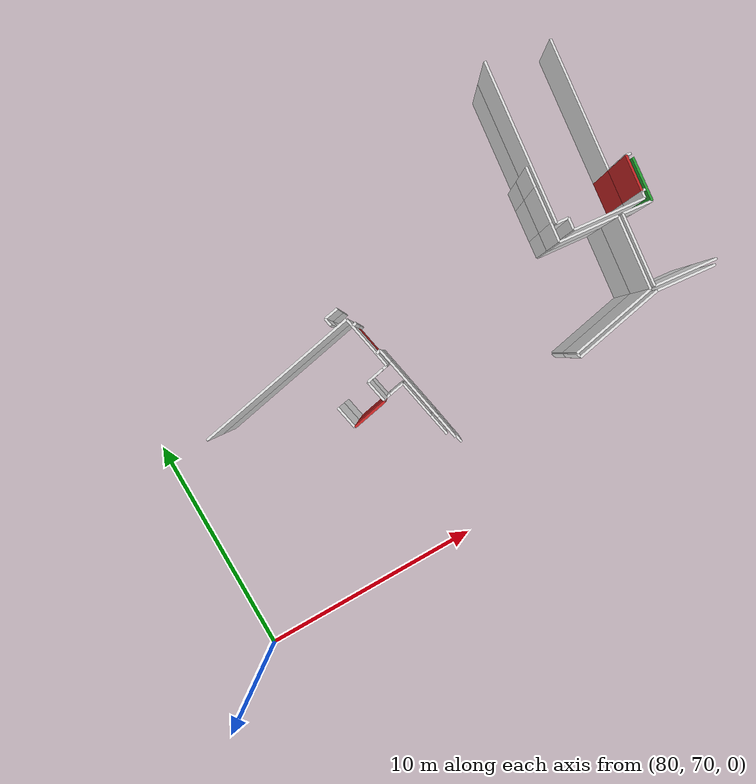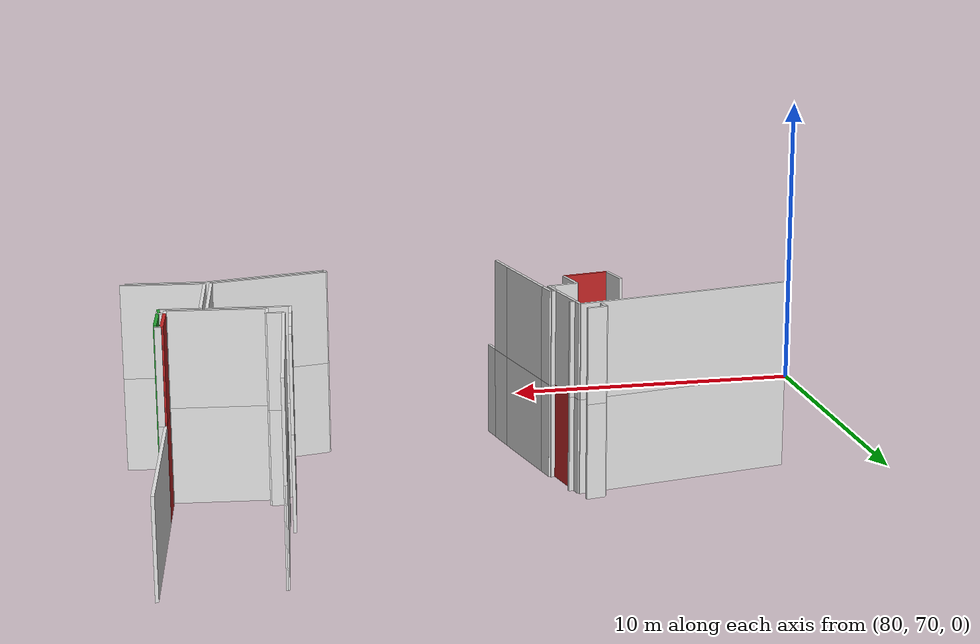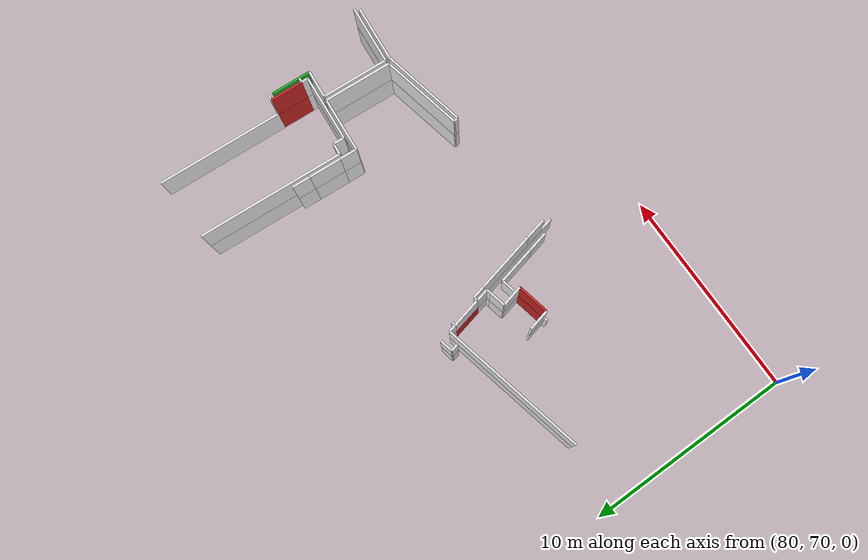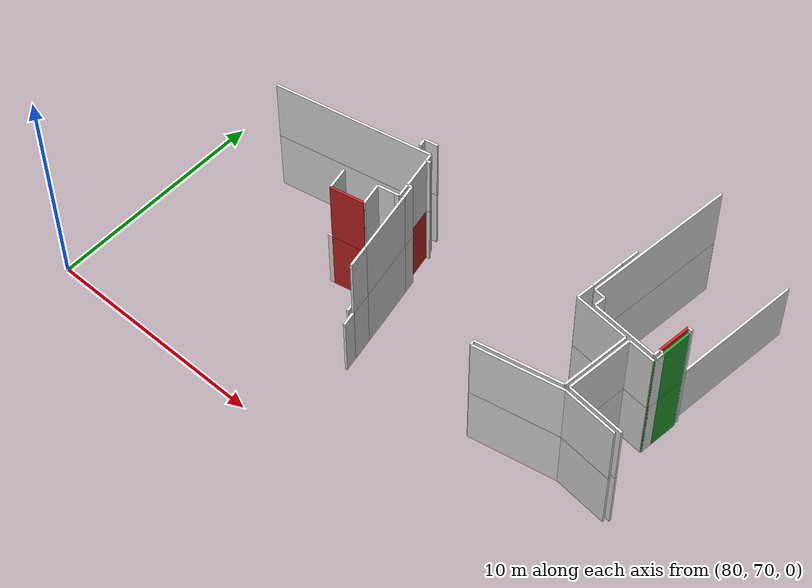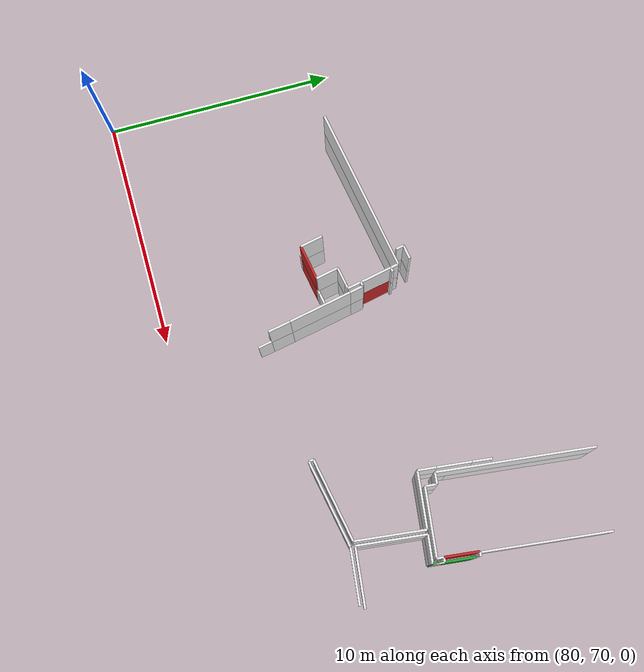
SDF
<sdf version="1.6">
 <world name="default">
  <model name="wall_102.5_80.0_1.5">
   <static>true</static>
   <pose>102.52499999999418 79.9550000000745 1.5 0 0 -1.6711294309773623</pose>
   <link name="link">
    <visual name="visual">
     <geometry><box><size>1.4975313020620318 0.1 3</size></box></geometry>
     <material>
      <script><uri>file://media/materials/scripts/gazebo.material</uri><name>Gazebo/Red</name></script>
     </material>
    </visual>
    <collision name="collision"><geometry><box><size>1.4975313020620318 0.1 3</size></box></geometry></collision>
   </link>
  </model>
  <model name="wall_102.7_79.6_1.5">
   <static>true</static>
   <pose>102.69000000006054 79.59000000008382 1.5 0 0 1.4711276742268928</pose>
   <link name="link">
    <visual name="visual">
     <geometry><box><size>1.808977612096451 0.1 3</size></box></geometry>
     <material>
      <script><uri>file://media/materials/scripts/gazebo.material</uri><name>Gazebo/Green</name></script>
     </material>
    </visual>
    <collision name="collision"><geometry><box><size>1.808977612096451 0.1 3</size></box></geometry></collision>
   </link>
  </model>
  <model name="wall_89.2_76.9_1.5">
   <static>true</static>
   <pose>89.17999999999302 76.94499999983236 1.5 0 0 0.19349440931601616</pose>
   <link name="link">
    <visual name="visual">
     <geometry><box><size>1.508144555394632 0.1 3</size></box></geometry>
     <material>
      <script><uri>file://media/materials/scripts/gazebo.material</uri><name>Gazebo/Red</name></script>
     </material>
    </visual>
    <collision name="collision"><geometry><box><size>1.508144555394632 0.1 3</size></box></geometry></collision>
   </link>
  </model>
  <model name="wall_90.4_79.5_1.5">
   <static>true</static>
   <pose>90.41000000000349 79.52499999990687 1.5 0 0 -1.369193218179265</pose>
   <link name="link">
    <visual name="visual">
     <geometry><box><size>1.3983204211800917 0.1 3</size></box></geometry>
     <material>
      <script><uri>file://media/materials/scripts/gazebo.material</uri><name>Gazebo/Red</name></script>
     </material>
    </visual>
    <collision name="collision"><geometry><box><size>1.3983204211800917 0.1 3</size></box></geometry></collision>
   </link>
  </model>
  <model name="wall_102.7_79.6_4.5">
   <static>true</static>
   <pose>102.69000000006054 79.59000000008382 4.5 0 0 1.4711276742268928</pose>
   <link name="link">
    <visual name="visual">
     <geometry><box><size>1.808977612096451 0.1 3</size></box></geometry>
     <material>
      <script><uri>file://media/materials/scripts/gazebo.material</uri><name>Gazebo/Green</name></script>
     </material>
    </visual>
    <collision name="collision"><geometry><box><size>1.808977612096451 0.1 3</size></box></geometry></collision>
   </link>
  </model>
  <model name="wall_102.5_80.0_4.5">
   <static>true</static>
   <pose>102.52499999999418 79.9550000000745 4.5 0 0 -1.6711294309773623</pose>
   <link name="link">
    <visual name="visual">
     <geometry><box><size>1.4975313020620318 0.1 3</size></box></geometry>
     <material>
      <script><uri>file://media/materials/scripts/gazebo.material</uri><name>Gazebo/Red</name></script>
     </material>
    </visual>
    <collision name="collision"><geometry><box><size>1.4975313020620318 0.1 3</size></box></geometry></collision>
   </link>
  </model>
  <model name="wall_89.2_76.9_4.5">
   <static>true</static>
   <pose>89.17999999999302 76.94499999983236 4.5 0 0 0.19349440931601616</pose>
   <link name="link">
    <visual name="visual">
     <geometry><box><size>1.508144555394632 0.1 3</size></box></geometry>
     <material>
      <script><uri>file://media/materials/scripts/gazebo.material</uri><name>Gazebo/Red</name></script>
     </material>
    </visual>
    <collision name="collision"><geometry><box><size>1.508144555394632 0.1 3</size></box></geometry></collision>
   </link>
  </model>
  <model name="wall_102.9_83.7_1.5">
   <static>true</static>
   <pose>102.90499999999884 83.67500000004657 1.5 0 0 1.4686322544173183</pose>
   <link name="link">
    <visual name="visual">
     <geometry><box><size>5.98118717285533 0.1 3</size></box></geometry>
     <material>
      <script><uri>file://media/materials/scripts/gazebo.material</uri><name>Gazebo/White</name></script>
     </material>
    </visual>
    <collision name="collision"><geometry><box><size>5.98118717285533 0.1 3</size></box></geometry></collision>
   </link>
  </model>
  <model name="wall_99.4_83.9_1.5">
   <static>true</static>
   <pose>99.42499999998836 83.9199999999255 1.5 0 0 -1.6731505665400097</pose>
   <link name="link">
    <visual name="visual">
     <geometry><box><size>5.187147578541352 0.1 3</size></box></geometry>
     <material>
      <script><uri>file://media/materials/scripts/gazebo.material</uri><name>Gazebo/White</name></script>
     </material>
    </visual>
    <collision name="collision"><geometry><box><size>5.187147578541352 0.1 3</size></box></geometry></collision>
   </link>
  </model>
  <model name="wall_99.1_80.6_1.5">
   <static>true</static>
   <pose>99.08499999999185 80.59499999997206 1.5 0 0 -1.671129431008509</pose>
   <link name="link">
    <visual name="visual">
     <geometry><box><size>1.4975313015987124 0.1 3</size></box></geometry>
     <material>
      <script><uri>file://media/materials/scripts/gazebo.material</uri><name>Gazebo/White</name></script>
     </material>
    </visual>
    <collision name="collision"><geometry><box><size>1.4975313015987124 0.1 3</size></box></geometry></collision>
   </link>
  </model>
  <model name="wall_99.0_79.8_1.5">
   <static>true</static>
   <pose>99.00500000000466 79.80499999993481 1.5 0 0 -1.6814535476848524</pose>
   <link name="link">
    <visual name="visual">
     <geometry><box><size>0.0905538516971156 0.1 3</size></box></geometry>
     <material>
      <script><uri>file://media/materials/scripts/gazebo.material</uri><name>Gazebo/White</name></script>
     </material>
    </visual>
    <collision name="collision"><geometry><box><size>0.0905538516971156 0.1 3</size></box></geometry></collision>
   </link>
  </model>
  <model name="wall_99.2_79.7_1.5">
   <static>true</static>
   <pose>99.25 79.73499999986961 1.5 0 0 -0.0996686521223214</pose>
   <link name="link">
    <visual name="visual">
     <geometry><box><size>0.5024937810375105 0.1 3</size></box></geometry>
     <material>
      <script><uri>file://media/materials/scripts/gazebo.material</uri><name>Gazebo/White</name></script>
     </material>
    </visual>
    <collision name="collision"><geometry><box><size>0.5024937810375105 0.1 3</size></box></geometry></collision>
   </link>
  </model>
  <model name="wall_99.5_79.5_1.5">
   <static>true</static>
   <pose>99.47500000000582 79.45999999996275 1.5 0 0 -1.6704649792630062</pose>
   <link name="link">
    <visual name="visual">
     <geometry><box><size>0.5024937810548861 0.1 3</size></box></geometry>
     <material>
      <script><uri>file://media/materials/scripts/gazebo.material</uri><name>Gazebo/White</name></script>
     </material>
    </visual>
    <collision name="collision"><geometry><box><size>0.5024937810548861 0.1 3</size></box></geometry></collision>
   </link>
  </model>
  <model name="wall_100.9_79.1_1.5">
   <static>true</static>
   <pose>100.93499999999767 79.06000000005588 1.5 0 0 -0.10066865209668763</pose>
   <link name="link">
    <visual name="visual">
     <geometry><box><size>2.9851130631388623 0.1 3</size></box></geometry>
     <material>
      <script><uri>file://media/materials/scripts/gazebo.material</uri><name>Gazebo/White</name></script>
     </material>
    </visual>
    <collision name="collision"><geometry><box><size>2.9851130631388623 0.1 3</size></box></geometry></collision>
   </link>
  </model>
  <model name="wall_102.4_79.1_1.5">
   <static>true</static>
   <pose>102.43499999999767 79.06000000005588 1.5 0 0 1.471127674150051</pose>
   <link name="link">
    <visual name="visual">
     <geometry><box><size>0.3014962684510667 0.1 3</size></box></geometry>
     <material>
      <script><uri>file://media/materials/scripts/gazebo.material</uri><name>Gazebo/White</name></script>
     </material>
    </visual>
    <collision name="collision"><geometry><box><size>0.3014962684510667 0.1 3</size></box></geometry></collision>
   </link>
  </model>
  <model name="wall_102.6_78.9_1.5">
   <static>true</static>
   <pose>102.625 78.93999999994412 1.5 0 0 1.4711276742115245</pose>
   <link name="link">
    <visual name="visual">
     <geometry><box><size>0.502493781060678 0.1 3</size></box></geometry>
     <material>
      <script><uri>file://media/materials/scripts/gazebo.material</uri><name>Gazebo/White</name></script>
     </material>
    </visual>
    <collision name="collision"><geometry><box><size>0.502493781060678 0.1 3</size></box></geometry></collision>
   </link>
  </model>
  <model name="wall_102.6_79.2_1.5">
   <static>true</static>
   <pose>102.55000000001746 79.19999999995343 1.5 0 0 3.0419240010121844</pose>
   <link name="link">
    <visual name="visual">
     <geometry><box><size>0.20099751243585498 0.1 3</size></box></geometry>
     <material>
      <script><uri>file://media/materials/scripts/gazebo.material</uri><name>Gazebo/White</name></script>
     </material>
    </visual>
    <collision name="collision"><geometry><box><size>0.20099751243585498 0.1 3</size></box></geometry></collision>
   </link>
  </model>
  <model name="wall_102.7_80.7_1.5">
   <static>true</static>
   <pose>102.69999999998254 80.68500000005588 1.5 0 0 -0.14888994887611873</pose>
   <link name="link">
    <visual name="visual">
     <geometry><box><size>0.20223748421176238 0.1 3</size></box></geometry>
     <material>
      <script><uri>file://media/materials/scripts/gazebo.material</uri><name>Gazebo/White</name></script>
     </material>
    </visual>
    <collision name="collision"><geometry><box><size>0.20223748421176238 0.1 3</size></box></geometry></collision>
   </link>
  </model>
  <model name="wall_102.0_78.8_1.5">
   <static>true</static>
   <pose>101.98999999999069 78.75499999988824 1.5 0 0 3.035435852165321</pose>
   <link name="link">
    <visual name="visual">
     <geometry><box><size>1.2269066793781709 0.1 3</size></box></geometry>
     <material>
      <script><uri>file://media/materials/scripts/gazebo.material</uri><name>Gazebo/White</name></script>
     </material>
    </visual>
    <collision name="collision"><geometry><box><size>1.2269066793781709 0.1 3</size></box></geometry></collision>
   </link>
  </model>
  <model name="wall_101.2_77.3_1.5">
   <static>true</static>
   <pose>101.22500000000582 77.31499999994412 1.5 0 0 -1.6734245234307366</pose>
   <link name="link">
    <visual name="visual">
     <geometry><box><size>3.0259213470698443 0.1 3</size></box></geometry>
     <material>
      <script><uri>file://media/materials/scripts/gazebo.material</uri><name>Gazebo/White</name></script>
     </material>
    </visual>
    <collision name="collision"><geometry><box><size>3.0259213470698443 0.1 3</size></box></geometry></collision>
   </link>
  </model>
  <model name="wall_102.4_75.7_1.5">
   <static>true</static>
   <pose>102.36499999999069 75.67999999993481 1.5 0 0 -0.10005091556329442</pose>
   <link name="link">
    <visual name="visual">
     <geometry><box><size>2.6030174797640266 0.1 3</size></box></geometry>
     <material>
      <script><uri>file://media/materials/scripts/gazebo.material</uri><name>Gazebo/White</name></script>
     </material>
    </visual>
    <collision name="collision"><geometry><box><size>2.6030174797640266 0.1 3</size></box></geometry></collision>
   </link>
  </model>
  <model name="wall_88.3_76.8_1.5">
   <static>true</static>
   <pose>88.33999999999651 76.77999999979511 1.5 0 0 -2.9441970935720057</pose>
   <link name="link">
    <visual name="visual">
     <geometry><box><size>0.20396078056243275 0.1 3</size></box></geometry>
     <material>
      <script><uri>file://media/materials/scripts/gazebo.material</uri><name>Gazebo/White</name></script>
     </material>
    </visual>
    <collision name="collision"><geometry><box><size>0.20396078056243275 0.1 3</size></box></geometry></collision>
   </link>
  </model>
  <model name="wall_91.2_75.0_1.5">
   <static>true</static>
   <pose>91.25 75.0199999997858 1.5 0 0 1.7721134351276446</pose>
   <link name="link">
    <visual name="visual">
     <geometry><box><size>1.0001999799764374 0.1 3</size></box></geometry>
     <material>
      <script><uri>file://media/materials/scripts/gazebo.material</uri><name>Gazebo/White</name></script>
     </material>
    </visual>
    <collision name="collision"><geometry><box><size>1.0001999799764374 0.1 3</size></box></geometry></collision>
   </link>
  </model>
  <model name="wall_91.0_76.4_1.5">
   <static>true</static>
   <pose>90.97500000000582 76.38499999977648 1.5 0 0 1.7681918866639668</pose>
   <link name="link">
    <visual name="visual">
     <geometry><box><size>1.784656829764324 0.1 3</size></box></geometry>
     <material>
      <script><uri>file://media/materials/scripts/gazebo.material</uri><name>Gazebo/White</name></script>
     </material>
    </visual>
    <collision name="collision"><geometry><box><size>1.784656829764324 0.1 3</size></box></geometry></collision>
   </link>
  </model>
  <model name="wall_90.5_77.2_1.5">
   <static>true</static>
   <pose>90.4549999999872 77.19499999983236 1.5 0 0 -2.9553698133356825</pose>
   <link name="link">
    <visual name="visual">
     <geometry><box><size>0.7021395872432744 0.1 3</size></box></geometry>
     <material>
      <script><uri>file://media/materials/scripts/gazebo.material</uri><name>Gazebo/White</name></script>
     </material>
    </visual>
    <collision name="collision"><geometry><box><size>0.7021395872432744 0.1 3</size></box></geometry></collision>
   </link>
  </model>
  <model name="wall_90.0_77.1_1.5">
   <static>true</static>
   <pose>90.01499999998487 77.10999999986961 1.5 0 0 -2.9340964269693144</pose>
   <link name="link">
    <visual name="visual">
     <geometry><box><size>0.19416487839942884 0.1 3</size></box></geometry>
     <material>
      <script><uri>file://media/materials/scripts/gazebo.material</uri><name>Gazebo/White</name></script>
     </material>
    </visual>
    <collision name="collision"><geometry><box><size>0.19416487839942884 0.1 3</size></box></geometry></collision>
   </link>
  </model>
  <model name="wall_99.2_75.2_1.5">
   <static>true</static>
   <pose>99.16000000000349 75.22999999998137 1.5 0 0 0.19638851078826064</pose>
   <link name="link">
    <visual name="visual">
     <geometry><box><size>3.8948684187933256 0.1 3</size></box></geometry>
     <material>
      <script><uri>file://media/materials/scripts/gazebo.material</uri><name>Gazebo/White</name></script>
     </material>
    </visual>
    <collision name="collision"><geometry><box><size>3.8948684187933256 0.1 3</size></box></geometry></collision>
   </link>
  </model>
  <model name="wall_102.3_75.5_1.5">
   <static>true</static>
   <pose>102.27999999999884 75.48999999999069 1.5 0 0 -0.09885032196984292</pose>
   <link name="link">
    <visual name="visual">
     <geometry><box><size>2.431871707102348 0.1 3</size></box></geometry>
     <material>
      <script><uri>file://media/materials/scripts/gazebo.material</uri><name>Gazebo/White</name></script>
     </material>
    </visual>
    <collision name="collision"><geometry><box><size>2.431871707102348 0.1 3</size></box></geometry></collision>
   </link>
  </model>
  <model name="wall_99.0_81.8_1.5">
   <static>true</static>
   <pose>99.01499999998487 81.78000000002794 1.5 0 0 -1.6775319994342452</pose>
   <link name="link">
    <visual name="visual">
     <geometry><box><size>0.8448076707372996 0.1 3</size></box></geometry>
     <material>
      <script><uri>file://media/materials/scripts/gazebo.material</uri><name>Gazebo/White</name></script>
     </material>
    </visual>
    <collision name="collision"><geometry><box><size>0.8448076707372996 0.1 3</size></box></geometry></collision>
   </link>
  </model>
  <model name="wall_98.9_80.6_1.5">
   <static>true</static>
   <pose>98.89499999998952 80.61499999999069 1.5 0 0 -1.671129431008509</pose>
   <link name="link">
    <visual name="visual">
     <geometry><box><size>1.4975313015987124 0.1 3</size></box></geometry>
     <material>
      <script><uri>file://media/materials/scripts/gazebo.material</uri><name>Gazebo/White</name></script>
     </material>
    </visual>
    <collision name="collision"><geometry><box><size>1.4975313015987124 0.1 3</size></box></geometry></collision>
   </link>
  </model>
  <model name="wall_98.8_79.5_1.5">
   <static>true</static>
   <pose>98.77999999999884 79.47500000009313 1.5 0 0 -1.6717181114778847</pose>
   <link name="link">
    <visual name="visual">
     <geometry><box><size>0.794040301282918 0.1 3</size></box></geometry>
     <material>
      <script><uri>file://media/materials/scripts/gazebo.material</uri><name>Gazebo/White</name></script>
     </material>
    </visual>
    <collision name="collision"><geometry><box><size>0.794040301282918 0.1 3</size></box></geometry></collision>
   </link>
  </model>
  <model name="wall_100.0_79.0_1.5">
   <static>true</static>
   <pose>99.96499999999651 78.95999999996275 1.5 0 0 -0.09764763673931534</pose>
   <link name="link">
    <visual name="visual">
     <geometry><box><size>2.461727036079413 0.1 3</size></box></geometry>
     <material>
      <script><uri>file://media/materials/scripts/gazebo.material</uri><name>Gazebo/White</name></script>
     </material>
    </visual>
    <collision name="collision"><geometry><box><size>2.461727036079413 0.1 3</size></box></geometry></collision>
   </link>
  </model>
  <model name="wall_101.0_77.3_1.5">
   <static>true</static>
   <pose>101.02999999999884 77.30999999982305 1.5 0 0 -1.6749927620578993</pose>
   <link name="link">
    <visual name="visual">
     <geometry><box><size>3.0766865294251953 0.1 3</size></box></geometry>
     <material>
      <script><uri>file://media/materials/scripts/gazebo.material</uri><name>Gazebo/White</name></script>
     </material>
    </visual>
    <collision name="collision"><geometry><box><size>3.0766865294251953 0.1 3</size></box></geometry></collision>
   </link>
  </model>
  <model name="wall_99.0_75.4_1.5">
   <static>true</static>
   <pose>99.04000000000815 75.41499999980442 1.5 0 0 -2.9447225797697154</pose>
   <link name="link">
    <visual name="visual">
     <geometry><box><size>3.7320905669323365 0.1 3</size></box></geometry>
     <material>
      <script><uri>file://media/materials/scripts/gazebo.material</uri><name>Gazebo/White</name></script>
     </material>
    </visual>
    <collision name="collision"><geometry><box><size>3.7320905669323365 0.1 3</size></box></geometry></collision>
   </link>
  </model>
  <model name="wall_97.2_74.9_1.5">
   <static>true</static>
   <pose>97.23000000001048 74.94999999995343 1.5 0 0 -1.373400766777109</pose>
   <link name="link">
    <visual name="visual">
     <geometry><box><size>0.20396078026563078 0.1 3</size></box></geometry>
     <material>
      <script><uri>file://media/materials/scripts/gazebo.material</uri><name>Gazebo/White</name></script>
     </material>
    </visual>
    <collision name="collision"><geometry><box><size>0.20396078026563078 0.1 3</size></box></geometry></collision>
   </link>
  </model>
  <model name="wall_91.5_75.1_1.5">
   <static>true</static>
   <pose>91.49500000002445 75.07000000006519 1.5 0 0 1.7622980452703567</pose>
   <link name="link">
    <visual name="visual">
     <geometry><box><size>0.9982484660465935 0.1 3</size></box></geometry>
     <material>
      <script><uri>file://media/materials/scripts/gazebo.material</uri><name>Gazebo/White</name></script>
     </material>
    </visual>
    <collision name="collision"><geometry><box><size>0.9982484660465935 0.1 3</size></box></geometry></collision>
   </link>
  </model>
  <model name="wall_91.1_76.9_1.5">
   <static>true</static>
   <pose>91.125 76.92500000004657 1.5 0 0 1.7696003364353865</pose>
   <link name="link">
    <visual name="visual">
     <geometry><box><size>2.7848518811508667 0.1 3</size></box></geometry>
     <material>
      <script><uri>file://media/materials/scripts/gazebo.material</uri><name>Gazebo/White</name></script>
     </material>
    </visual>
    <collision name="collision"><geometry><box><size>2.7848518811508667 0.1 3</size></box></geometry></collision>
   </link>
  </model>
  <model name="wall_90.8_78.6_1.5">
   <static>true</static>
   <pose>90.78999999997905 78.58499999996275 1.5 0 0 1.7714492041565322</pose>
   <link name="link">
    <visual name="visual">
     <geometry><box><size>0.6020797287926647 0.1 3</size></box></geometry>
     <material>
      <script><uri>file://media/materials/scripts/gazebo.material</uri><name>Gazebo/White</name></script>
     </material>
    </visual>
    <collision name="collision"><geometry><box><size>0.6020797287926647 0.1 3</size></box></geometry></collision>
   </link>
  </model>
  <model name="wall_90.6_78.9_1.5">
   <static>true</static>
   <pose>90.63999999998487 78.85999999986961 1.5 0 0 -2.9229237075104124</pose>
   <link name="link">
    <visual name="visual">
     <geometry><box><size>0.18439088914712043 0.1 3</size></box></geometry>
     <material>
      <script><uri>file://media/materials/scripts/gazebo.material</uri><name>Gazebo/White</name></script>
     </material>
    </visual>
    <collision name="collision"><geometry><box><size>0.18439088914712043 0.1 3</size></box></geometry></collision>
   </link>
  </model>
  <model name="wall_90.4_80.2_1.5">
   <static>true</static>
   <pose>90.36500000001979 80.22999999998137 1.5 0 0 0.20749622662047904</pose>
   <link name="link">
    <visual name="visual">
     <geometry><box><size>0.19416487839942884 0.1 3</size></box></geometry>
     <material>
      <script><uri>file://media/materials/scripts/gazebo.material</uri><name>Gazebo/White</name></script>
     </material>
    </visual>
    <collision name="collision"><geometry><box><size>0.19416487839942884 0.1 3</size></box></geometry></collision>
   </link>
  </model>
  <model name="wall_90.2_80.4_1.5">
   <static>true</static>
   <pose>90.23500000001513 80.37999999988824 1.5 0 0 -1.3677511094351602</pose>
   <link name="link">
    <visual name="visual">
     <geometry><box><size>0.34713109900965367 0.1 3</size></box></geometry>
     <material>
      <script><uri>file://media/materials/scripts/gazebo.material</uri><name>Gazebo/White</name></script>
     </material>
    </visual>
    <collision name="collision"><geometry><box><size>0.34713109900965367 0.1 3</size></box></geometry></collision>
   </link>
  </model>
  <model name="wall_90.6_78.5_1.5">
   <static>true</static>
   <pose>90.60499999998137 78.5449999999255 1.5 0 0 -1.386471917872574</pose>
   <link name="link">
    <visual name="visual">
     <geometry><box><size>0.6001666433758985 0.1 3</size></box></geometry>
     <material>
      <script><uri>file://media/materials/scripts/gazebo.material</uri><name>Gazebo/White</name></script>
     </material>
    </visual>
    <collision name="collision"><geometry><box><size>0.6001666433758985 0.1 3</size></box></geometry></collision>
   </link>
  </model>
  <model name="wall_90.6_78.2_1.5">
   <static>true</static>
   <pose>90.56499999997322 78.22999999998137 1.5 0 0 -2.9340964269693144</pose>
   <link name="link">
    <visual name="visual">
     <geometry><box><size>0.19416487839942884 0.1 3</size></box></geometry>
     <material>
      <script><uri>file://media/materials/scripts/gazebo.material</uri><name>Gazebo/White</name></script>
     </material>
    </visual>
    <collision name="collision"><geometry><box><size>0.19416487839942884 0.1 3</size></box></geometry></collision>
   </link>
  </model>
  <model name="wall_90.1_78.1_1.5">
   <static>true</static>
   <pose>90.09499999997206 78.13500000000931 1.5 0 0 -2.9441970938593127</pose>
   <link name="link">
    <visual name="visual">
     <geometry><box><size>0.764852927020653 0.1 3</size></box></geometry>
     <material>
      <script><uri>file://media/materials/scripts/gazebo.material</uri><name>Gazebo/White</name></script>
     </material>
    </visual>
    <collision name="collision"><geometry><box><size>0.764852927020653 0.1 3</size></box></geometry></collision>
   </link>
  </model>
  <model name="wall_89.8_77.6_1.5">
   <static>true</static>
   <pose>89.81999999997788 77.57499999995343 1.5 0 0 -1.367460242796885</pose>
   <link name="link">
    <visual name="visual">
     <geometry><box><size>0.990403958191881 0.1 3</size></box></geometry>
     <material>
      <script><uri>file://media/materials/scripts/gazebo.material</uri><name>Gazebo/White</name></script>
     </material>
    </visual>
    <collision name="collision"><geometry><box><size>0.990403958191881 0.1 3</size></box></geometry></collision>
   </link>
  </model>
  <model name="wall_88.3_77.3_1.5">
   <static>true</static>
   <pose>88.33999999999651 77.28499999991618 1.5 0 0 1.7741324107929084</pose>
   <link name="link">
    <visual name="visual">
     <geometry><box><size>0.990403958191881 0.1 3</size></box></geometry>
     <material>
      <script><uri>file://media/materials/scripts/gazebo.material</uri><name>Gazebo/White</name></script>
     </material>
    </visual>
    <collision name="collision"><geometry><box><size>0.990403958191881 0.1 3</size></box></geometry></collision>
   </link>
  </model>
  <model name="wall_86.7_79.9_1.5">
   <static>true</static>
   <pose>86.73500000001513 79.86499999999069 1.5 0 0 0.1951745751129922</pose>
   <link name="link">
    <visual name="visual">
     <geometry><box><size>7.064120610446391 0.1 3</size></box></geometry>
     <material>
      <script><uri>file://media/materials/scripts/gazebo.material</uri><name>Gazebo/White</name></script>
     </material>
    </visual>
    <collision name="collision"><geometry><box><size>7.064120610446391 0.1 3</size></box></geometry></collision>
   </link>
  </model>
  <model name="wall_89.5_80.8_1.5">
   <static>true</static>
   <pose>89.53500000000349 80.80000000004657 1.5 0 0 1.7738415438841244</pose>
   <link name="link">
    <visual name="visual">
     <geometry><box><size>0.34713109946574894 0.1 3</size></box></geometry>
     <material>
      <script><uri>file://media/materials/scripts/gazebo.material</uri><name>Gazebo/White</name></script>
     </material>
    </visual>
    <collision name="collision"><geometry><box><size>0.34713109946574894 0.1 3</size></box></geometry></collision>
   </link>
  </model>
  <model name="wall_89.8_81.0_1.5">
   <static>true</static>
   <pose>89.79999999998836 81.0250000001397 1.5 0 0 0.18131977419813103</pose>
   <link name="link">
    <visual name="visual">
     <geometry><box><size>0.6099999999535866 0.1 3</size></box></geometry>
     <material>
      <script><uri>file://media/materials/scripts/gazebo.material</uri><name>Gazebo/White</name></script>
     </material>
    </visual>
    <collision name="collision"><geometry><box><size>0.6099999999535866 0.1 3</size></box></geometry></collision>
   </link>
  </model>
  <model name="wall_91.2_76.4_1.5">
   <static>true</static>
   <pose>91.22000000000116 76.4199999999255 1.5 0 0 -1.3741826276038303</pose>
   <link name="link">
    <visual name="visual">
     <geometry><box><size>5.016652270124415 0.1 3</size></box></geometry>
     <material>
      <script><uri>file://media/materials/scripts/gazebo.material</uri><name>Gazebo/White</name></script>
     </material>
    </visual>
    <collision name="collision"><geometry><box><size>5.016652270124415 0.1 3</size></box></geometry></collision>
   </link>
  </model>
  <model name="wall_99.3_83.1_1.5">
   <static>true</static>
   <pose>99.34500000000116 83.12999999988824 1.5 0 0 1.4687778475258746</pose>
   <link name="link">
    <visual name="visual">
     <geometry><box><size>6.775226933691315 0.1 3</size></box></geometry>
     <material>
      <script><uri>file://media/materials/scripts/gazebo.material</uri><name>Gazebo/White</name></script>
     </material>
    </visual>
    <collision name="collision"><geometry><box><size>6.775226933691315 0.1 3</size></box></geometry></collision>
   </link>
  </model>
  <model name="wall_102.6_78.9_4.5">
   <static>true</static>
   <pose>102.625 78.93999999994412 4.5 0 0 1.4711276742115245</pose>
   <link name="link">
    <visual name="visual">
     <geometry><box><size>0.502493781060678 0.1 3</size></box></geometry>
     <material>
      <script><uri>file://media/materials/scripts/gazebo.material</uri><name>Gazebo/White</name></script>
     </material>
    </visual>
    <collision name="collision"><geometry><box><size>0.502493781060678 0.1 3</size></box></geometry></collision>
   </link>
  </model>
  <model name="wall_102.6_79.2_4.5">
   <static>true</static>
   <pose>102.55000000001746 79.19999999995343 4.5 0 0 3.0419240010121844</pose>
   <link name="link">
    <visual name="visual">
     <geometry><box><size>0.20099751243585498 0.1 3</size></box></geometry>
     <material>
      <script><uri>file://media/materials/scripts/gazebo.material</uri><name>Gazebo/White</name></script>
     </material>
    </visual>
    <collision name="collision"><geometry><box><size>0.20099751243585498 0.1 3</size></box></geometry></collision>
   </link>
  </model>
  <model name="wall_102.7_80.7_4.5">
   <static>true</static>
   <pose>102.69999999998254 80.68500000005588 4.5 0 0 -0.14888994887611873</pose>
   <link name="link">
    <visual name="visual">
     <geometry><box><size>0.20223748421176238 0.1 3</size></box></geometry>
     <material>
      <script><uri>file://media/materials/scripts/gazebo.material</uri><name>Gazebo/White</name></script>
     </material>
    </visual>
    <collision name="collision"><geometry><box><size>0.20223748421176238 0.1 3</size></box></geometry></collision>
   </link>
  </model>
  <model name="wall_102.0_78.8_4.5">
   <static>true</static>
   <pose>101.98999999999069 78.75499999988824 4.5 0 0 3.035435852165321</pose>
   <link name="link">
    <visual name="visual">
     <geometry><box><size>1.2269066793781709 0.1 3</size></box></geometry>
     <material>
      <script><uri>file://media/materials/scripts/gazebo.material</uri><name>Gazebo/White</name></script>
     </material>
    </visual>
    <collision name="collision"><geometry><box><size>1.2269066793781709 0.1 3</size></box></geometry></collision>
   </link>
  </model>
  <model name="wall_101.2_77.3_4.5">
   <static>true</static>
   <pose>101.22500000000582 77.31499999994412 4.5 0 0 -1.6734245234307366</pose>
   <link name="link">
    <visual name="visual">
     <geometry><box><size>3.0259213470698443 0.1 3</size></box></geometry>
     <material>
      <script><uri>file://media/materials/scripts/gazebo.material</uri><name>Gazebo/White</name></script>
     </material>
    </visual>
    <collision name="collision"><geometry><box><size>3.0259213470698443 0.1 3</size></box></geometry></collision>
   </link>
  </model>
  <model name="wall_102.4_75.7_4.5">
   <static>true</static>
   <pose>102.36499999999069 75.67999999993481 4.5 0 0 -0.10005091556329442</pose>
   <link name="link">
    <visual name="visual">
     <geometry><box><size>2.6030174797640266 0.1 3</size></box></geometry>
     <material>
      <script><uri>file://media/materials/scripts/gazebo.material</uri><name>Gazebo/White</name></script>
     </material>
    </visual>
    <collision name="collision"><geometry><box><size>2.6030174797640266 0.1 3</size></box></geometry></collision>
   </link>
  </model>
  <model name="wall_99.2_75.2_4.5">
   <static>true</static>
   <pose>99.16000000000349 75.22999999998137 4.5 0 0 0.19638851078826064</pose>
   <link name="link">
    <visual name="visual">
     <geometry><box><size>3.8948684187933256 0.1 3</size></box></geometry>
     <material>
      <script><uri>file://media/materials/scripts/gazebo.material</uri><name>Gazebo/White</name></script>
     </material>
    </visual>
    <collision name="collision"><geometry><box><size>3.8948684187933256 0.1 3</size></box></geometry></collision>
   </link>
  </model>
  <model name="wall_102.3_75.5_4.5">
   <static>true</static>
   <pose>102.27999999999884 75.48999999999069 4.5 0 0 -0.09885032196984292</pose>
   <link name="link">
    <visual name="visual">
     <geometry><box><size>2.431871707102348 0.1 3</size></box></geometry>
     <material>
      <script><uri>file://media/materials/scripts/gazebo.material</uri><name>Gazebo/White</name></script>
     </material>
    </visual>
    <collision name="collision"><geometry><box><size>2.431871707102348 0.1 3</size></box></geometry></collision>
   </link>
  </model>
  <model name="wall_99.0_81.8_4.5">
   <static>true</static>
   <pose>99.01499999998487 81.78000000002794 4.5 0 0 -1.6775319994342452</pose>
   <link name="link">
    <visual name="visual">
     <geometry><box><size>0.8448076707372996 0.1 3</size></box></geometry>
     <material>
      <script><uri>file://media/materials/scripts/gazebo.material</uri><name>Gazebo/White</name></script>
     </material>
    </visual>
    <collision name="collision"><geometry><box><size>0.8448076707372996 0.1 3</size></box></geometry></collision>
   </link>
  </model>
  <model name="wall_98.9_80.6_4.5">
   <static>true</static>
   <pose>98.89499999998952 80.61499999999069 4.5 0 0 -1.671129431008509</pose>
   <link name="link">
    <visual name="visual">
     <geometry><box><size>1.4975313015987124 0.1 3</size></box></geometry>
     <material>
      <script><uri>file://media/materials/scripts/gazebo.material</uri><name>Gazebo/White</name></script>
     </material>
    </visual>
    <collision name="collision"><geometry><box><size>1.4975313015987124 0.1 3</size></box></geometry></collision>
   </link>
  </model>
  <model name="wall_98.8_79.5_4.5">
   <static>true</static>
   <pose>98.77999999999884 79.47500000009313 4.5 0 0 -1.6717181114778847</pose>
   <link name="link">
    <visual name="visual">
     <geometry><box><size>0.794040301282918 0.1 3</size></box></geometry>
     <material>
      <script><uri>file://media/materials/scripts/gazebo.material</uri><name>Gazebo/White</name></script>
     </material>
    </visual>
    <collision name="collision"><geometry><box><size>0.794040301282918 0.1 3</size></box></geometry></collision>
   </link>
  </model>
  <model name="wall_100.0_79.0_4.5">
   <static>true</static>
   <pose>99.96499999999651 78.95999999996275 4.5 0 0 -0.09764763673931534</pose>
   <link name="link">
    <visual name="visual">
     <geometry><box><size>2.461727036079413 0.1 3</size></box></geometry>
     <material>
      <script><uri>file://media/materials/scripts/gazebo.material</uri><name>Gazebo/White</name></script>
     </material>
    </visual>
    <collision name="collision"><geometry><box><size>2.461727036079413 0.1 3</size></box></geometry></collision>
   </link>
  </model>
  <model name="wall_101.0_77.3_4.5">
   <static>true</static>
   <pose>101.02999999999884 77.30999999982305 4.5 0 0 -1.6749927620578993</pose>
   <link name="link">
    <visual name="visual">
     <geometry><box><size>3.0766865294251953 0.1 3</size></box></geometry>
     <material>
      <script><uri>file://media/materials/scripts/gazebo.material</uri><name>Gazebo/White</name></script>
     </material>
    </visual>
    <collision name="collision"><geometry><box><size>3.0766865294251953 0.1 3</size></box></geometry></collision>
   </link>
  </model>
  <model name="wall_99.0_75.4_4.5">
   <static>true</static>
   <pose>99.04000000000815 75.41499999980442 4.5 0 0 -2.9447225797697154</pose>
   <link name="link">
    <visual name="visual">
     <geometry><box><size>3.7320905669323365 0.1 3</size></box></geometry>
     <material>
      <script><uri>file://media/materials/scripts/gazebo.material</uri><name>Gazebo/White</name></script>
     </material>
    </visual>
    <collision name="collision"><geometry><box><size>3.7320905669323365 0.1 3</size></box></geometry></collision>
   </link>
  </model>
  <model name="wall_97.2_74.9_4.5">
   <static>true</static>
   <pose>97.23000000001048 74.94999999995343 4.5 0 0 -1.373400766777109</pose>
   <link name="link">
    <visual name="visual">
     <geometry><box><size>0.20396078026563078 0.1 3</size></box></geometry>
     <material>
      <script><uri>file://media/materials/scripts/gazebo.material</uri><name>Gazebo/White</name></script>
     </material>
    </visual>
    <collision name="collision"><geometry><box><size>0.20396078026563078 0.1 3</size></box></geometry></collision>
   </link>
  </model>
  <model name="wall_91.5_75.1_4.5">
   <static>true</static>
   <pose>91.49500000002445 75.07000000006519 4.5 0 0 1.7622980452703567</pose>
   <link name="link">
    <visual name="visual">
     <geometry><box><size>0.9982484660465935 0.1 3</size></box></geometry>
     <material>
      <script><uri>file://media/materials/scripts/gazebo.material</uri><name>Gazebo/White</name></script>
     </material>
    </visual>
    <collision name="collision"><geometry><box><size>0.9982484660465935 0.1 3</size></box></geometry></collision>
   </link>
  </model>
  <model name="wall_91.1_76.9_4.5">
   <static>true</static>
   <pose>91.125 76.92500000004657 4.5 0 0 1.7696003364353865</pose>
   <link name="link">
    <visual name="visual">
     <geometry><box><size>2.7848518811508667 0.1 3</size></box></geometry>
     <material>
      <script><uri>file://media/materials/scripts/gazebo.material</uri><name>Gazebo/White</name></script>
     </material>
    </visual>
    <collision name="collision"><geometry><box><size>2.7848518811508667 0.1 3</size></box></geometry></collision>
   </link>
  </model>
  <model name="wall_90.8_78.6_4.5">
   <static>true</static>
   <pose>90.78999999997905 78.58499999996275 4.5 0 0 1.7714492041565322</pose>
   <link name="link">
    <visual name="visual">
     <geometry><box><size>0.6020797287926647 0.1 3</size></box></geometry>
     <material>
      <script><uri>file://media/materials/scripts/gazebo.material</uri><name>Gazebo/White</name></script>
     </material>
    </visual>
    <collision name="collision"><geometry><box><size>0.6020797287926647 0.1 3</size></box></geometry></collision>
   </link>
  </model>
  <model name="wall_90.6_78.9_4.5">
   <static>true</static>
   <pose>90.63999999998487 78.85999999986961 4.5 0 0 -2.9229237075104124</pose>
   <link name="link">
    <visual name="visual">
     <geometry><box><size>0.18439088914712043 0.1 3</size></box></geometry>
     <material>
      <script><uri>file://media/materials/scripts/gazebo.material</uri><name>Gazebo/White</name></script>
     </material>
    </visual>
    <collision name="collision"><geometry><box><size>0.18439088914712043 0.1 3</size></box></geometry></collision>
   </link>
  </model>
  <model name="wall_90.4_79.5_4.5">
   <static>true</static>
   <pose>90.41000000000349 79.52499999990687 4.5 0 0 1.7723994354105284</pose>
   <link name="link">
    <visual name="visual">
     <geometry><box><size>1.3983204211800917 0.1 3</size></box></geometry>
     <material>
      <script><uri>file://media/materials/scripts/gazebo.material</uri><name>Gazebo/White</name></script>
     </material>
    </visual>
    <collision name="collision"><geometry><box><size>1.3983204211800917 0.1 3</size></box></geometry></collision>
   </link>
  </model>
  <model name="wall_90.4_80.2_4.5">
   <static>true</static>
   <pose>90.36500000001979 80.22999999998137 4.5 0 0 0.20749622662047904</pose>
   <link name="link">
    <visual name="visual">
     <geometry><box><size>0.19416487839942884 0.1 3</size></box></geometry>
     <material>
      <script><uri>file://media/materials/scripts/gazebo.material</uri><name>Gazebo/White</name></script>
     </material>
    </visual>
    <collision name="collision"><geometry><box><size>0.19416487839942884 0.1 3</size></box></geometry></collision>
   </link>
  </model>
  <model name="wall_90.2_80.4_4.5">
   <static>true</static>
   <pose>90.23500000001513 80.37999999988824 4.5 0 0 -1.3677511094351602</pose>
   <link name="link">
    <visual name="visual">
     <geometry><box><size>0.34713109900965367 0.1 3</size></box></geometry>
     <material>
      <script><uri>file://media/materials/scripts/gazebo.material</uri><name>Gazebo/White</name></script>
     </material>
    </visual>
    <collision name="collision"><geometry><box><size>0.34713109900965367 0.1 3</size></box></geometry></collision>
   </link>
  </model>
  <model name="wall_90.6_78.5_4.5">
   <static>true</static>
   <pose>90.60499999998137 78.5449999999255 4.5 0 0 -1.386471917872574</pose>
   <link name="link">
    <visual name="visual">
     <geometry><box><size>0.6001666433758985 0.1 3</size></box></geometry>
     <material>
      <script><uri>file://media/materials/scripts/gazebo.material</uri><name>Gazebo/White</name></script>
     </material>
    </visual>
    <collision name="collision"><geometry><box><size>0.6001666433758985 0.1 3</size></box></geometry></collision>
   </link>
  </model>
  <model name="wall_90.6_78.2_4.5">
   <static>true</static>
   <pose>90.56499999997322 78.22999999998137 4.5 0 0 -2.9340964269693144</pose>
   <link name="link">
    <visual name="visual">
     <geometry><box><size>0.19416487839942884 0.1 3</size></box></geometry>
     <material>
      <script><uri>file://media/materials/scripts/gazebo.material</uri><name>Gazebo/White</name></script>
     </material>
    </visual>
    <collision name="collision"><geometry><box><size>0.19416487839942884 0.1 3</size></box></geometry></collision>
   </link>
  </model>
  <model name="wall_90.1_78.1_4.5">
   <static>true</static>
   <pose>90.09499999997206 78.13500000000931 4.5 0 0 -2.9441970938593127</pose>
   <link name="link">
    <visual name="visual">
     <geometry><box><size>0.764852927020653 0.1 3</size></box></geometry>
     <material>
      <script><uri>file://media/materials/scripts/gazebo.material</uri><name>Gazebo/White</name></script>
     </material>
    </visual>
    <collision name="collision"><geometry><box><size>0.764852927020653 0.1 3</size></box></geometry></collision>
   </link>
  </model>
  <model name="wall_89.8_77.6_4.5">
   <static>true</static>
   <pose>89.81999999997788 77.57499999995343 4.5 0 0 -1.367460242796885</pose>
   <link name="link">
    <visual name="visual">
     <geometry><box><size>0.990403958191881 0.1 3</size></box></geometry>
     <material>
      <script><uri>file://media/materials/scripts/gazebo.material</uri><name>Gazebo/White</name></script>
     </material>
    </visual>
    <collision name="collision"><geometry><box><size>0.990403958191881 0.1 3</size></box></geometry></collision>
   </link>
  </model>
  <model name="wall_88.3_77.3_4.5">
   <static>true</static>
   <pose>88.33999999999651 77.28499999991618 4.5 0 0 1.7741324107929084</pose>
   <link name="link">
    <visual name="visual">
     <geometry><box><size>0.990403958191881 0.1 3</size></box></geometry>
     <material>
      <script><uri>file://media/materials/scripts/gazebo.material</uri><name>Gazebo/White</name></script>
     </material>
    </visual>
    <collision name="collision"><geometry><box><size>0.990403958191881 0.1 3</size></box></geometry></collision>
   </link>
  </model>
  <model name="wall_86.7_79.9_4.5">
   <static>true</static>
   <pose>86.73500000001513 79.86499999999069 4.5 0 0 0.1951745751129922</pose>
   <link name="link">
    <visual name="visual">
     <geometry><box><size>7.064120610446391 0.1 3</size></box></geometry>
     <material>
      <script><uri>file://media/materials/scripts/gazebo.material</uri><name>Gazebo/White</name></script>
     </material>
    </visual>
    <collision name="collision"><geometry><box><size>7.064120610446391 0.1 3</size></box></geometry></collision>
   </link>
  </model>
  <model name="wall_89.5_80.8_4.5">
   <static>true</static>
   <pose>89.53500000000349 80.80000000004657 4.5 0 0 1.7738415438841244</pose>
   <link name="link">
    <visual name="visual">
     <geometry><box><size>0.34713109946574894 0.1 3</size></box></geometry>
     <material>
      <script><uri>file://media/materials/scripts/gazebo.material</uri><name>Gazebo/White</name></script>
     </material>
    </visual>
    <collision name="collision"><geometry><box><size>0.34713109946574894 0.1 3</size></box></geometry></collision>
   </link>
  </model>
  <model name="wall_89.8_81.0_4.5">
   <static>true</static>
   <pose>89.79999999998836 81.0250000001397 4.5 0 0 0.18131977419813103</pose>
   <link name="link">
    <visual name="visual">
     <geometry><box><size>0.6099999999535866 0.1 3</size></box></geometry>
     <material>
      <script><uri>file://media/materials/scripts/gazebo.material</uri><name>Gazebo/White</name></script>
     </material>
    </visual>
    <collision name="collision"><geometry><box><size>0.6099999999535866 0.1 3</size></box></geometry></collision>
   </link>
  </model>
  <model name="wall_102.4_79.1_4.5">
   <static>true</static>
   <pose>102.43499999999767 79.06000000005588 4.5 0 0 -1.6704649794397421</pose>
   <link name="link">
    <visual name="visual">
     <geometry><box><size>0.3014962684510667 0.1 3</size></box></geometry>
     <material>
      <script><uri>file://media/materials/scripts/gazebo.material</uri><name>Gazebo/White</name></script>
     </material>
    </visual>
    <collision name="collision"><geometry><box><size>0.3014962684510667 0.1 3</size></box></geometry></collision>
   </link>
  </model>
  <model name="wall_100.9_79.1_4.5">
   <static>true</static>
   <pose>100.93499999999767 79.06000000005588 4.5 0 0 3.0409240014931056</pose>
   <link name="link">
    <visual name="visual">
     <geometry><box><size>2.9851130631388623 0.1 3</size></box></geometry>
     <material>
      <script><uri>file://media/materials/scripts/gazebo.material</uri><name>Gazebo/White</name></script>
     </material>
    </visual>
    <collision name="collision"><geometry><box><size>2.9851130631388623 0.1 3</size></box></geometry></collision>
   </link>
  </model>
  <model name="wall_99.5_79.5_4.5">
   <static>true</static>
   <pose>99.47500000000582 79.45999999996275 4.5 0 0 1.4711276743267871</pose>
   <link name="link">
    <visual name="visual">
     <geometry><box><size>0.5024937810548861 0.1 3</size></box></geometry>
     <material>
      <script><uri>file://media/materials/scripts/gazebo.material</uri><name>Gazebo/White</name></script>
     </material>
    </visual>
    <collision name="collision"><geometry><box><size>0.5024937810548861 0.1 3</size></box></geometry></collision>
   </link>
  </model>
  <model name="wall_99.2_79.7_4.5">
   <static>true</static>
   <pose>99.25 79.73499999986961 4.5 0 0 3.0419240014674718</pose>
   <link name="link">
    <visual name="visual">
     <geometry><box><size>0.5024937810375105 0.1 3</size></box></geometry>
     <material>
      <script><uri>file://media/materials/scripts/gazebo.material</uri><name>Gazebo/White</name></script>
     </material>
    </visual>
    <collision name="collision"><geometry><box><size>0.5024937810375105 0.1 3</size></box></geometry></collision>
   </link>
  </model>
  <model name="wall_99.3_83.1_4.5">
   <static>true</static>
   <pose>99.34500000000116 83.12999999988824 4.5 0 0 1.4687778475258746</pose>
   <link name="link">
    <visual name="visual">
     <geometry><box><size>6.775226933691315 0.1 3</size></box></geometry>
     <material>
      <script><uri>file://media/materials/scripts/gazebo.material</uri><name>Gazebo/White</name></script>
     </material>
    </visual>
    <collision name="collision"><geometry><box><size>6.775226933691315 0.1 3</size></box></geometry></collision>
   </link>
  </model>
 </world>
</sdf>
